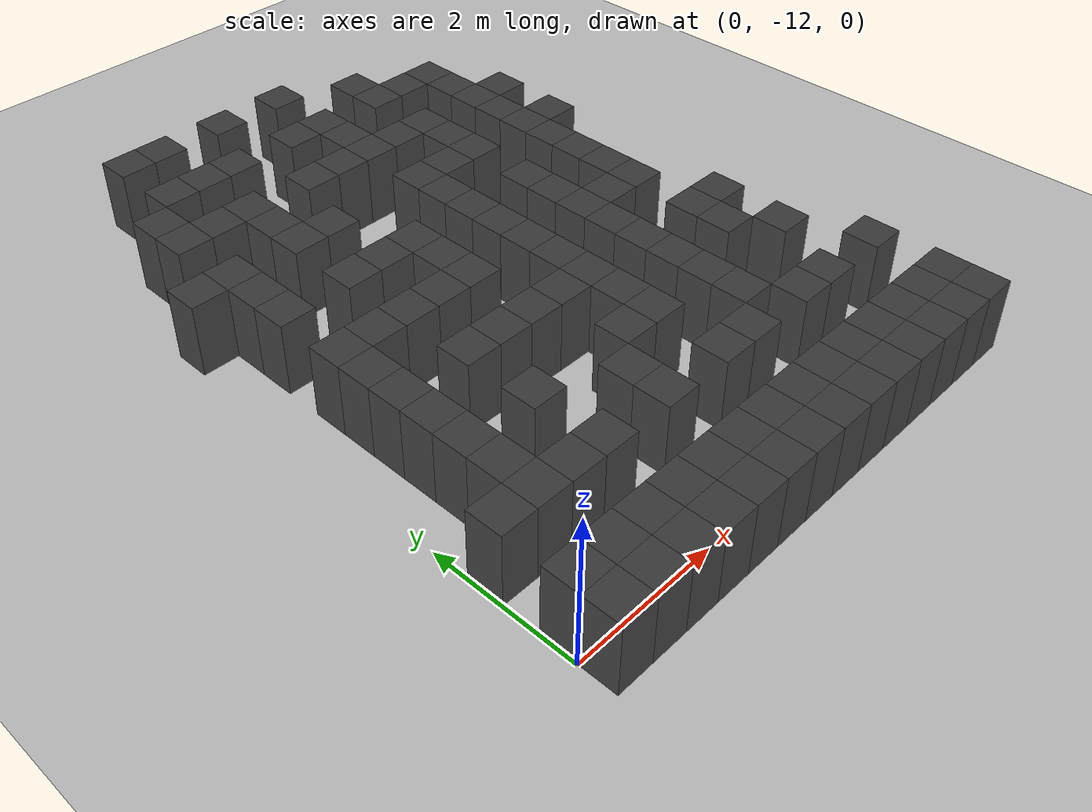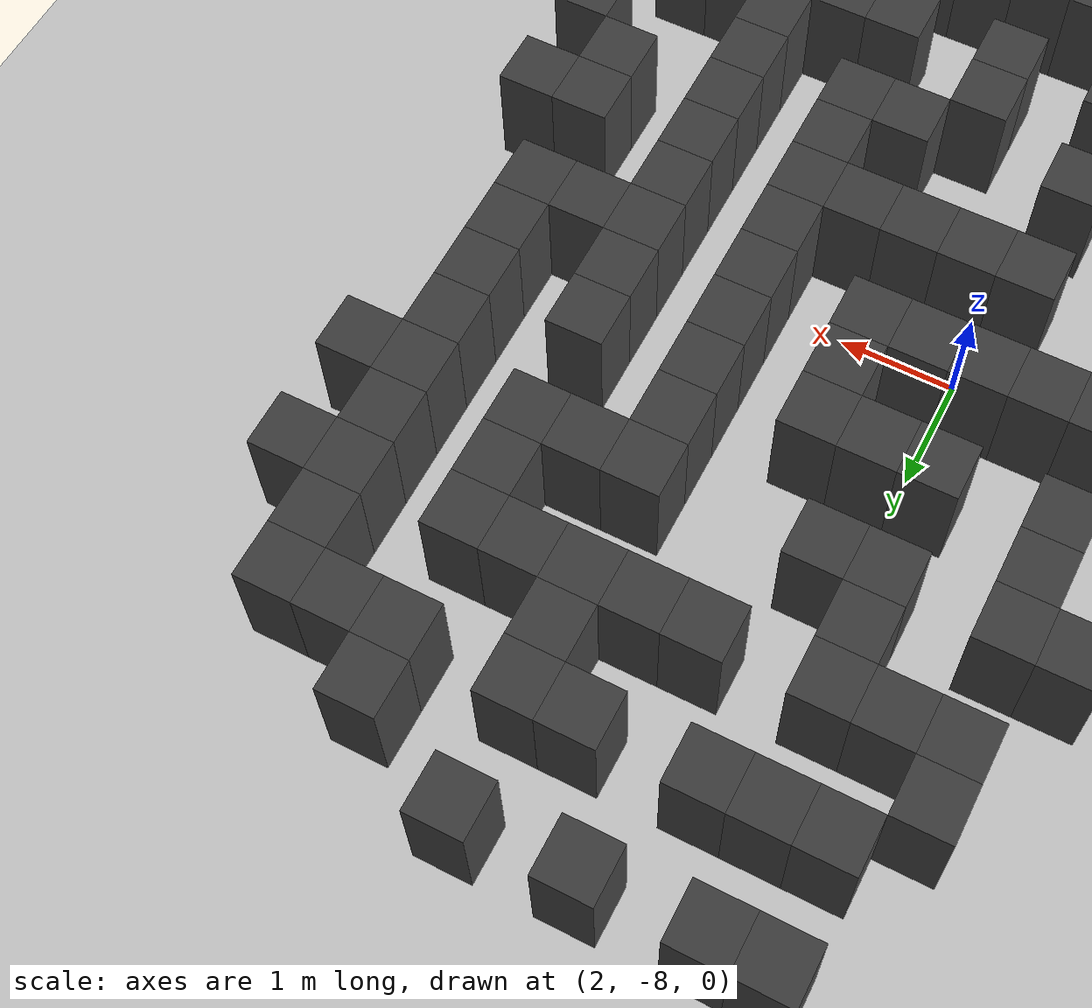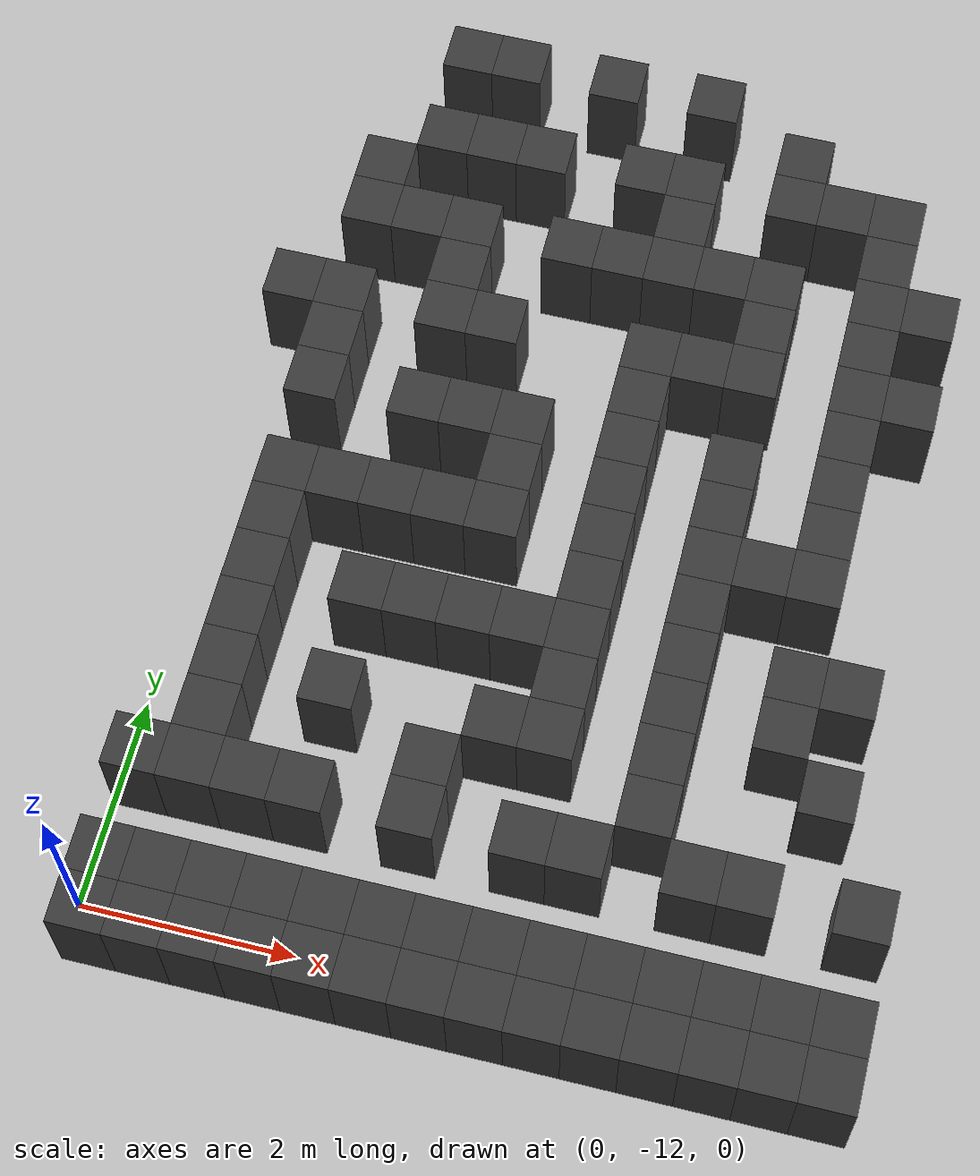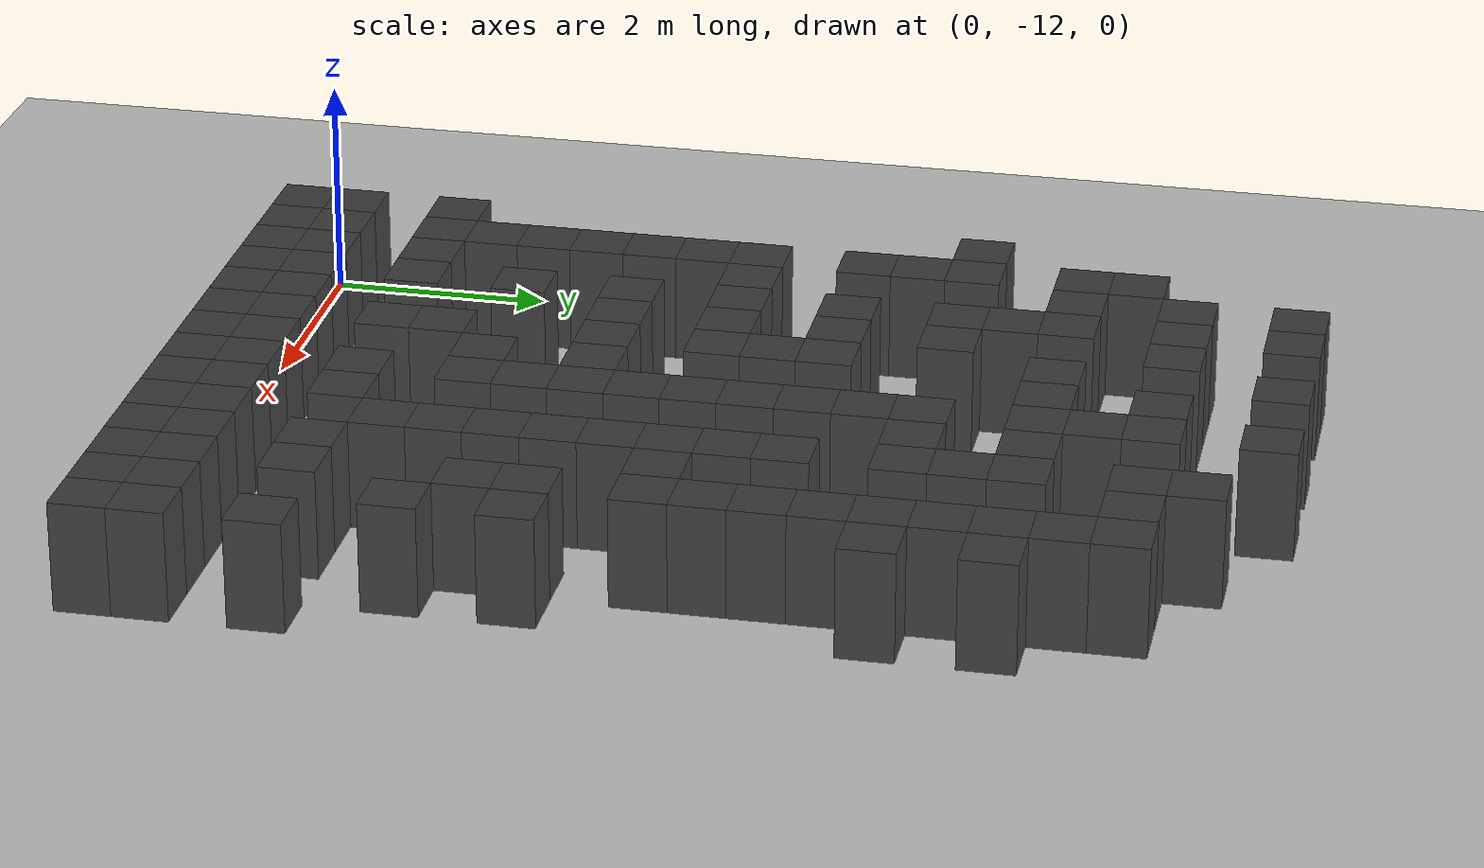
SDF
<sdf version="1.7">
 <world name="map_16271">
  <model name="ground_plane">
   <static>true</static>
   <link name="link">
    <collision name="collision">
     <geometry><plane><normal>0 0 1</normal><size>200 200</size></plane></geometry>
    </collision>
    <visual name="visual">
     <geometry><plane><normal>0 0 1</normal><size>200 200</size></plane></geometry>
     <material><ambient>0.8 0.8 0.8 1</ambient><diffuse>0.8 0.8 0.8 1</diffuse></material>
    </visual>
   </link>
  </model>
  <model name="maze_environment">
   <static>true</static>
   <link name="wall_738">
    <pose>1.250 -2.750 0.500 0 0 0</pose>
    <collision name="col"><geometry><box><size>0.5 0.5 1.0</size></box></geometry></collision>
    <visual name="vis">
     <geometry><box><size>0.5 0.5 1.0</size></box></geometry>
     <material><ambient>0.15 0.15 0.15 1</ambient><diffuse>0.25 0.25 0.25 1</diffuse></material>
    </visual>
   </link>
   <link name="wall_739">
    <pose>1.750 -2.750 0.500 0 0 0</pose>
    <collision name="col"><geometry><box><size>0.5 0.5 1.0</size></box></geometry></collision>
    <visual name="vis">
     <geometry><box><size>0.5 0.5 1.0</size></box></geometry>
     <material><ambient>0.15 0.15 0.15 1</ambient><diffuse>0.25 0.25 0.25 1</diffuse></material>
    </visual>
   </link>
   <link name="wall_740">
    <pose>2.750 -2.750 0.500 0 0 0</pose>
    <collision name="col"><geometry><box><size>0.5 0.5 1.0</size></box></geometry></collision>
    <visual name="vis">
     <geometry><box><size>0.5 0.5 1.0</size></box></geometry>
     <material><ambient>0.15 0.15 0.15 1</ambient><diffuse>0.25 0.25 0.25 1</diffuse></material>
    </visual>
   </link>
   <link name="wall_741">
    <pose>3.750 -2.750 0.500 0 0 0</pose>
    <collision name="col"><geometry><box><size>0.5 0.5 1.0</size></box></geometry></collision>
    <visual name="vis">
     <geometry><box><size>0.5 0.5 1.0</size></box></geometry>
     <material><ambient>0.15 0.15 0.15 1</ambient><diffuse>0.25 0.25 0.25 1</diffuse></material>
    </visual>
   </link>
   <link name="wall_757">
    <pose>4.750 -3.250 0.500 0 0 0</pose>
    <collision name="col"><geometry><box><size>0.5 0.5 1.0</size></box></geometry></collision>
    <visual name="vis">
     <geometry><box><size>0.5 0.5 1.0</size></box></geometry>
     <material><ambient>0.15 0.15 0.15 1</ambient><diffuse>0.25 0.25 0.25 1</diffuse></material>
    </visual>
   </link>
   <link name="wall_781">
    <pose>1.250 -3.750 0.500 0 0 0</pose>
    <collision name="col"><geometry><box><size>0.5 0.5 1.0</size></box></geometry></collision>
    <visual name="vis">
     <geometry><box><size>0.5 0.5 1.0</size></box></geometry>
     <material><ambient>0.15 0.15 0.15 1</ambient><diffuse>0.25 0.25 0.25 1</diffuse></material>
    </visual>
   </link>
   <link name="wall_782">
    <pose>1.750 -3.750 0.500 0 0 0</pose>
    <collision name="col"><geometry><box><size>0.5 0.5 1.0</size></box></geometry></collision>
    <visual name="vis">
     <geometry><box><size>0.5 0.5 1.0</size></box></geometry>
     <material><ambient>0.15 0.15 0.15 1</ambient><diffuse>0.25 0.25 0.25 1</diffuse></material>
    </visual>
   </link>
   <link name="wall_783">
    <pose>2.250 -3.750 0.500 0 0 0</pose>
    <collision name="col"><geometry><box><size>0.5 0.5 1.0</size></box></geometry></collision>
    <visual name="vis">
     <geometry><box><size>0.5 0.5 1.0</size></box></geometry>
     <material><ambient>0.15 0.15 0.15 1</ambient><diffuse>0.25 0.25 0.25 1</diffuse></material>
    </visual>
   </link>
   <link name="wall_784">
    <pose>3.250 -3.750 0.500 0 0 0</pose>
    <collision name="col"><geometry><box><size>0.5 0.5 1.0</size></box></geometry></collision>
    <visual name="vis">
     <geometry><box><size>0.5 0.5 1.0</size></box></geometry>
     <material><ambient>0.15 0.15 0.15 1</ambient><diffuse>0.25 0.25 0.25 1</diffuse></material>
    </visual>
   </link>
   <link name="wall_785">
    <pose>3.750 -3.750 0.500 0 0 0</pose>
    <collision name="col"><geometry><box><size>0.5 0.5 1.0</size></box></geometry></collision>
    <visual name="vis">
     <geometry><box><size>0.5 0.5 1.0</size></box></geometry>
     <material><ambient>0.15 0.15 0.15 1</ambient><diffuse>0.25 0.25 0.25 1</diffuse></material>
    </visual>
   </link>
   <link name="wall_786">
    <pose>4.750 -3.750 0.500 0 0 0</pose>
    <collision name="col"><geometry><box><size>0.5 0.5 1.0</size></box></geometry></collision>
    <visual name="vis">
     <geometry><box><size>0.5 0.5 1.0</size></box></geometry>
     <material><ambient>0.15 0.15 0.15 1</ambient><diffuse>0.25 0.25 0.25 1</diffuse></material>
    </visual>
   </link>
   <link name="wall_787">
    <pose>5.250 -3.750 0.500 0 0 0</pose>
    <collision name="col"><geometry><box><size>0.5 0.5 1.0</size></box></geometry></collision>
    <visual name="vis">
     <geometry><box><size>0.5 0.5 1.0</size></box></geometry>
     <material><ambient>0.15 0.15 0.15 1</ambient><diffuse>0.25 0.25 0.25 1</diffuse></material>
    </visual>
   </link>
   <link name="wall_788">
    <pose>5.750 -3.750 0.500 0 0 0</pose>
    <collision name="col"><geometry><box><size>0.5 0.5 1.0</size></box></geometry></collision>
    <visual name="vis">
     <geometry><box><size>0.5 0.5 1.0</size></box></geometry>
     <material><ambient>0.15 0.15 0.15 1</ambient><diffuse>0.25 0.25 0.25 1</diffuse></material>
    </visual>
   </link>
   <link name="wall_804">
    <pose>0.750 -4.250 0.500 0 0 0</pose>
    <collision name="col"><geometry><box><size>0.5 0.5 1.0</size></box></geometry></collision>
    <visual name="vis">
     <geometry><box><size>0.5 0.5 1.0</size></box></geometry>
     <material><ambient>0.15 0.15 0.15 1</ambient><diffuse>0.25 0.25 0.25 1</diffuse></material>
    </visual>
   </link>
   <link name="wall_805">
    <pose>3.750 -4.250 0.500 0 0 0</pose>
    <collision name="col"><geometry><box><size>0.5 0.5 1.0</size></box></geometry></collision>
    <visual name="vis">
     <geometry><box><size>0.5 0.5 1.0</size></box></geometry>
     <material><ambient>0.15 0.15 0.15 1</ambient><diffuse>0.25 0.25 0.25 1</diffuse></material>
    </visual>
   </link>
   <link name="wall_806">
    <pose>5.750 -4.250 0.500 0 0 0</pose>
    <collision name="col"><geometry><box><size>0.5 0.5 1.0</size></box></geometry></collision>
    <visual name="vis">
     <geometry><box><size>0.5 0.5 1.0</size></box></geometry>
     <material><ambient>0.15 0.15 0.15 1</ambient><diffuse>0.25 0.25 0.25 1</diffuse></material>
    </visual>
   </link>
   <link name="wall_828">
    <pose>0.750 -4.750 0.500 0 0 0</pose>
    <collision name="col"><geometry><box><size>0.5 0.5 1.0</size></box></geometry></collision>
    <visual name="vis">
     <geometry><box><size>0.5 0.5 1.0</size></box></geometry>
     <material><ambient>0.15 0.15 0.15 1</ambient><diffuse>0.25 0.25 0.25 1</diffuse></material>
    </visual>
   </link>
   <link name="wall_829">
    <pose>1.250 -4.750 0.500 0 0 0</pose>
    <collision name="col"><geometry><box><size>0.5 0.5 1.0</size></box></geometry></collision>
    <visual name="vis">
     <geometry><box><size>0.5 0.5 1.0</size></box></geometry>
     <material><ambient>0.15 0.15 0.15 1</ambient><diffuse>0.25 0.25 0.25 1</diffuse></material>
    </visual>
   </link>
   <link name="wall_830">
    <pose>1.750 -4.750 0.500 0 0 0</pose>
    <collision name="col"><geometry><box><size>0.5 0.5 1.0</size></box></geometry></collision>
    <visual name="vis">
     <geometry><box><size>0.5 0.5 1.0</size></box></geometry>
     <material><ambient>0.15 0.15 0.15 1</ambient><diffuse>0.25 0.25 0.25 1</diffuse></material>
    </visual>
   </link>
   <link name="wall_831">
    <pose>2.750 -4.750 0.500 0 0 0</pose>
    <collision name="col"><geometry><box><size>0.5 0.5 1.0</size></box></geometry></collision>
    <visual name="vis">
     <geometry><box><size>0.5 0.5 1.0</size></box></geometry>
     <material><ambient>0.15 0.15 0.15 1</ambient><diffuse>0.25 0.25 0.25 1</diffuse></material>
    </visual>
   </link>
   <link name="wall_832">
    <pose>3.250 -4.750 0.500 0 0 0</pose>
    <collision name="col"><geometry><box><size>0.5 0.5 1.0</size></box></geometry></collision>
    <visual name="vis">
     <geometry><box><size>0.5 0.5 1.0</size></box></geometry>
     <material><ambient>0.15 0.15 0.15 1</ambient><diffuse>0.25 0.25 0.25 1</diffuse></material>
    </visual>
   </link>
   <link name="wall_833">
    <pose>3.750 -4.750 0.500 0 0 0</pose>
    <collision name="col"><geometry><box><size>0.5 0.5 1.0</size></box></geometry></collision>
    <visual name="vis">
     <geometry><box><size>0.5 0.5 1.0</size></box></geometry>
     <material><ambient>0.15 0.15 0.15 1</ambient><diffuse>0.25 0.25 0.25 1</diffuse></material>
    </visual>
   </link>
   <link name="wall_834">
    <pose>4.250 -4.750 0.500 0 0 0</pose>
    <collision name="col"><geometry><box><size>0.5 0.5 1.0</size></box></geometry></collision>
    <visual name="vis">
     <geometry><box><size>0.5 0.5 1.0</size></box></geometry>
     <material><ambient>0.15 0.15 0.15 1</ambient><diffuse>0.25 0.25 0.25 1</diffuse></material>
    </visual>
   </link>
   <link name="wall_835">
    <pose>4.750 -4.750 0.500 0 0 0</pose>
    <collision name="col"><geometry><box><size>0.5 0.5 1.0</size></box></geometry></collision>
    <visual name="vis">
     <geometry><box><size>0.5 0.5 1.0</size></box></geometry>
     <material><ambient>0.15 0.15 0.15 1</ambient><diffuse>0.25 0.25 0.25 1</diffuse></material>
    </visual>
   </link>
   <link name="wall_836">
    <pose>5.750 -4.750 0.500 0 0 0</pose>
    <collision name="col"><geometry><box><size>0.5 0.5 1.0</size></box></geometry></collision>
    <visual name="vis">
     <geometry><box><size>0.5 0.5 1.0</size></box></geometry>
     <material><ambient>0.15 0.15 0.15 1</ambient><diffuse>0.25 0.25 0.25 1</diffuse></material>
    </visual>
   </link>
   <link name="wall_837">
    <pose>6.250 -4.750 0.500 0 0 0</pose>
    <collision name="col"><geometry><box><size>0.5 0.5 1.0</size></box></geometry></collision>
    <visual name="vis">
     <geometry><box><size>0.5 0.5 1.0</size></box></geometry>
     <material><ambient>0.15 0.15 0.15 1</ambient><diffuse>0.25 0.25 0.25 1</diffuse></material>
    </visual>
   </link>
   <link name="wall_855">
    <pose>1.750 -5.250 0.500 0 0 0</pose>
    <collision name="col"><geometry><box><size>0.5 0.5 1.0</size></box></geometry></collision>
    <visual name="vis">
     <geometry><box><size>0.5 0.5 1.0</size></box></geometry>
     <material><ambient>0.15 0.15 0.15 1</ambient><diffuse>0.25 0.25 0.25 1</diffuse></material>
    </visual>
   </link>
   <link name="wall_856">
    <pose>4.750 -5.250 0.500 0 0 0</pose>
    <collision name="col"><geometry><box><size>0.5 0.5 1.0</size></box></geometry></collision>
    <visual name="vis">
     <geometry><box><size>0.5 0.5 1.0</size></box></geometry>
     <material><ambient>0.15 0.15 0.15 1</ambient><diffuse>0.25 0.25 0.25 1</diffuse></material>
    </visual>
   </link>
   <link name="wall_857">
    <pose>5.750 -5.250 0.500 0 0 0</pose>
    <collision name="col"><geometry><box><size>0.5 0.5 1.0</size></box></geometry></collision>
    <visual name="vis">
     <geometry><box><size>0.5 0.5 1.0</size></box></geometry>
     <material><ambient>0.15 0.15 0.15 1</ambient><diffuse>0.25 0.25 0.25 1</diffuse></material>
    </visual>
   </link>
   <link name="wall_875">
    <pose>0.250 -5.750 0.500 0 0 0</pose>
    <collision name="col"><geometry><box><size>0.5 0.5 1.0</size></box></geometry></collision>
    <visual name="vis">
     <geometry><box><size>0.5 0.5 1.0</size></box></geometry>
     <material><ambient>0.15 0.15 0.15 1</ambient><diffuse>0.25 0.25 0.25 1</diffuse></material>
    </visual>
   </link>
   <link name="wall_876">
    <pose>0.750 -5.750 0.500 0 0 0</pose>
    <collision name="col"><geometry><box><size>0.5 0.5 1.0</size></box></geometry></collision>
    <visual name="vis">
     <geometry><box><size>0.5 0.5 1.0</size></box></geometry>
     <material><ambient>0.15 0.15 0.15 1</ambient><diffuse>0.25 0.25 0.25 1</diffuse></material>
    </visual>
   </link>
   <link name="wall_877">
    <pose>1.750 -5.750 0.500 0 0 0</pose>
    <collision name="col"><geometry><box><size>0.5 0.5 1.0</size></box></geometry></collision>
    <visual name="vis">
     <geometry><box><size>0.5 0.5 1.0</size></box></geometry>
     <material><ambient>0.15 0.15 0.15 1</ambient><diffuse>0.25 0.25 0.25 1</diffuse></material>
    </visual>
   </link>
   <link name="wall_878">
    <pose>2.250 -5.750 0.500 0 0 0</pose>
    <collision name="col"><geometry><box><size>0.5 0.5 1.0</size></box></geometry></collision>
    <visual name="vis">
     <geometry><box><size>0.5 0.5 1.0</size></box></geometry>
     <material><ambient>0.15 0.15 0.15 1</ambient><diffuse>0.25 0.25 0.25 1</diffuse></material>
    </visual>
   </link>
   <link name="wall_879">
    <pose>3.750 -5.750 0.500 0 0 0</pose>
    <collision name="col"><geometry><box><size>0.5 0.5 1.0</size></box></geometry></collision>
    <visual name="vis">
     <geometry><box><size>0.5 0.5 1.0</size></box></geometry>
     <material><ambient>0.15 0.15 0.15 1</ambient><diffuse>0.25 0.25 0.25 1</diffuse></material>
    </visual>
   </link>
   <link name="wall_880">
    <pose>4.250 -5.750 0.500 0 0 0</pose>
    <collision name="col"><geometry><box><size>0.5 0.5 1.0</size></box></geometry></collision>
    <visual name="vis">
     <geometry><box><size>0.5 0.5 1.0</size></box></geometry>
     <material><ambient>0.15 0.15 0.15 1</ambient><diffuse>0.25 0.25 0.25 1</diffuse></material>
    </visual>
   </link>
   <link name="wall_881">
    <pose>4.750 -5.750 0.500 0 0 0</pose>
    <collision name="col"><geometry><box><size>0.5 0.5 1.0</size></box></geometry></collision>
    <visual name="vis">
     <geometry><box><size>0.5 0.5 1.0</size></box></geometry>
     <material><ambient>0.15 0.15 0.15 1</ambient><diffuse>0.25 0.25 0.25 1</diffuse></material>
    </visual>
   </link>
   <link name="wall_882">
    <pose>5.750 -5.750 0.500 0 0 0</pose>
    <collision name="col"><geometry><box><size>0.5 0.5 1.0</size></box></geometry></collision>
    <visual name="vis">
     <geometry><box><size>0.5 0.5 1.0</size></box></geometry>
     <material><ambient>0.15 0.15 0.15 1</ambient><diffuse>0.25 0.25 0.25 1</diffuse></material>
    </visual>
   </link>
   <link name="wall_883">
    <pose>6.250 -5.750 0.500 0 0 0</pose>
    <collision name="col"><geometry><box><size>0.5 0.5 1.0</size></box></geometry></collision>
    <visual name="vis">
     <geometry><box><size>0.5 0.5 1.0</size></box></geometry>
     <material><ambient>0.15 0.15 0.15 1</ambient><diffuse>0.25 0.25 0.25 1</diffuse></material>
    </visual>
   </link>
   <link name="wall_900">
    <pose>0.750 -6.250 0.500 0 0 0</pose>
    <collision name="col"><geometry><box><size>0.5 0.5 1.0</size></box></geometry></collision>
    <visual name="vis">
     <geometry><box><size>0.5 0.5 1.0</size></box></geometry>
     <material><ambient>0.15 0.15 0.15 1</ambient><diffuse>0.25 0.25 0.25 1</diffuse></material>
    </visual>
   </link>
   <link name="wall_901">
    <pose>3.750 -6.250 0.500 0 0 0</pose>
    <collision name="col"><geometry><box><size>0.5 0.5 1.0</size></box></geometry></collision>
    <visual name="vis">
     <geometry><box><size>0.5 0.5 1.0</size></box></geometry>
     <material><ambient>0.15 0.15 0.15 1</ambient><diffuse>0.25 0.25 0.25 1</diffuse></material>
    </visual>
   </link>
   <link name="wall_902">
    <pose>5.750 -6.250 0.500 0 0 0</pose>
    <collision name="col"><geometry><box><size>0.5 0.5 1.0</size></box></geometry></collision>
    <visual name="vis">
     <geometry><box><size>0.5 0.5 1.0</size></box></geometry>
     <material><ambient>0.15 0.15 0.15 1</ambient><diffuse>0.25 0.25 0.25 1</diffuse></material>
    </visual>
   </link>
   <link name="wall_927">
    <pose>0.750 -6.750 0.500 0 0 0</pose>
    <collision name="col"><geometry><box><size>0.5 0.5 1.0</size></box></geometry></collision>
    <visual name="vis">
     <geometry><box><size>0.5 0.5 1.0</size></box></geometry>
     <material><ambient>0.15 0.15 0.15 1</ambient><diffuse>0.25 0.25 0.25 1</diffuse></material>
    </visual>
   </link>
   <link name="wall_928">
    <pose>1.750 -6.750 0.500 0 0 0</pose>
    <collision name="col"><geometry><box><size>0.5 0.5 1.0</size></box></geometry></collision>
    <visual name="vis">
     <geometry><box><size>0.5 0.5 1.0</size></box></geometry>
     <material><ambient>0.15 0.15 0.15 1</ambient><diffuse>0.25 0.25 0.25 1</diffuse></material>
    </visual>
   </link>
   <link name="wall_929">
    <pose>2.250 -6.750 0.500 0 0 0</pose>
    <collision name="col"><geometry><box><size>0.5 0.5 1.0</size></box></geometry></collision>
    <visual name="vis">
     <geometry><box><size>0.5 0.5 1.0</size></box></geometry>
     <material><ambient>0.15 0.15 0.15 1</ambient><diffuse>0.25 0.25 0.25 1</diffuse></material>
    </visual>
   </link>
   <link name="wall_930">
    <pose>2.750 -6.750 0.500 0 0 0</pose>
    <collision name="col"><geometry><box><size>0.5 0.5 1.0</size></box></geometry></collision>
    <visual name="vis">
     <geometry><box><size>0.5 0.5 1.0</size></box></geometry>
     <material><ambient>0.15 0.15 0.15 1</ambient><diffuse>0.25 0.25 0.25 1</diffuse></material>
    </visual>
   </link>
   <link name="wall_931">
    <pose>3.750 -6.750 0.500 0 0 0</pose>
    <collision name="col"><geometry><box><size>0.5 0.5 1.0</size></box></geometry></collision>
    <visual name="vis">
     <geometry><box><size>0.5 0.5 1.0</size></box></geometry>
     <material><ambient>0.15 0.15 0.15 1</ambient><diffuse>0.25 0.25 0.25 1</diffuse></material>
    </visual>
   </link>
   <link name="wall_932">
    <pose>4.750 -6.750 0.500 0 0 0</pose>
    <collision name="col"><geometry><box><size>0.5 0.5 1.0</size></box></geometry></collision>
    <visual name="vis">
     <geometry><box><size>0.5 0.5 1.0</size></box></geometry>
     <material><ambient>0.15 0.15 0.15 1</ambient><diffuse>0.25 0.25 0.25 1</diffuse></material>
    </visual>
   </link>
   <link name="wall_933">
    <pose>5.750 -6.750 0.500 0 0 0</pose>
    <collision name="col"><geometry><box><size>0.5 0.5 1.0</size></box></geometry></collision>
    <visual name="vis">
     <geometry><box><size>0.5 0.5 1.0</size></box></geometry>
     <material><ambient>0.15 0.15 0.15 1</ambient><diffuse>0.25 0.25 0.25 1</diffuse></material>
    </visual>
   </link>
   <link name="wall_950">
    <pose>2.750 -7.250 0.500 0 0 0</pose>
    <collision name="col"><geometry><box><size>0.5 0.5 1.0</size></box></geometry></collision>
    <visual name="vis">
     <geometry><box><size>0.5 0.5 1.0</size></box></geometry>
     <material><ambient>0.15 0.15 0.15 1</ambient><diffuse>0.25 0.25 0.25 1</diffuse></material>
    </visual>
   </link>
   <link name="wall_951">
    <pose>3.750 -7.250 0.500 0 0 0</pose>
    <collision name="col"><geometry><box><size>0.5 0.5 1.0</size></box></geometry></collision>
    <visual name="vis">
     <geometry><box><size>0.5 0.5 1.0</size></box></geometry>
     <material><ambient>0.15 0.15 0.15 1</ambient><diffuse>0.25 0.25 0.25 1</diffuse></material>
    </visual>
   </link>
   <link name="wall_952">
    <pose>4.750 -7.250 0.500 0 0 0</pose>
    <collision name="col"><geometry><box><size>0.5 0.5 1.0</size></box></geometry></collision>
    <visual name="vis">
     <geometry><box><size>0.5 0.5 1.0</size></box></geometry>
     <material><ambient>0.15 0.15 0.15 1</ambient><diffuse>0.25 0.25 0.25 1</diffuse></material>
    </visual>
   </link>
   <link name="wall_953">
    <pose>5.750 -7.250 0.500 0 0 0</pose>
    <collision name="col"><geometry><box><size>0.5 0.5 1.0</size></box></geometry></collision>
    <visual name="vis">
     <geometry><box><size>0.5 0.5 1.0</size></box></geometry>
     <material><ambient>0.15 0.15 0.15 1</ambient><diffuse>0.25 0.25 0.25 1</diffuse></material>
    </visual>
   </link>
   <link name="wall_973">
    <pose>0.750 -7.750 0.500 0 0 0</pose>
    <collision name="col"><geometry><box><size>0.5 0.5 1.0</size></box></geometry></collision>
    <visual name="vis">
     <geometry><box><size>0.5 0.5 1.0</size></box></geometry>
     <material><ambient>0.15 0.15 0.15 1</ambient><diffuse>0.25 0.25 0.25 1</diffuse></material>
    </visual>
   </link>
   <link name="wall_974">
    <pose>1.250 -7.750 0.500 0 0 0</pose>
    <collision name="col"><geometry><box><size>0.5 0.5 1.0</size></box></geometry></collision>
    <visual name="vis">
     <geometry><box><size>0.5 0.5 1.0</size></box></geometry>
     <material><ambient>0.15 0.15 0.15 1</ambient><diffuse>0.25 0.25 0.25 1</diffuse></material>
    </visual>
   </link>
   <link name="wall_975">
    <pose>1.750 -7.750 0.500 0 0 0</pose>
    <collision name="col"><geometry><box><size>0.5 0.5 1.0</size></box></geometry></collision>
    <visual name="vis">
     <geometry><box><size>0.5 0.5 1.0</size></box></geometry>
     <material><ambient>0.15 0.15 0.15 1</ambient><diffuse>0.25 0.25 0.25 1</diffuse></material>
    </visual>
   </link>
   <link name="wall_976">
    <pose>2.250 -7.750 0.500 0 0 0</pose>
    <collision name="col"><geometry><box><size>0.5 0.5 1.0</size></box></geometry></collision>
    <visual name="vis">
     <geometry><box><size>0.5 0.5 1.0</size></box></geometry>
     <material><ambient>0.15 0.15 0.15 1</ambient><diffuse>0.25 0.25 0.25 1</diffuse></material>
    </visual>
   </link>
   <link name="wall_977">
    <pose>2.750 -7.750 0.500 0 0 0</pose>
    <collision name="col"><geometry><box><size>0.5 0.5 1.0</size></box></geometry></collision>
    <visual name="vis">
     <geometry><box><size>0.5 0.5 1.0</size></box></geometry>
     <material><ambient>0.15 0.15 0.15 1</ambient><diffuse>0.25 0.25 0.25 1</diffuse></material>
    </visual>
   </link>
   <link name="wall_978">
    <pose>3.750 -7.750 0.500 0 0 0</pose>
    <collision name="col"><geometry><box><size>0.5 0.5 1.0</size></box></geometry></collision>
    <visual name="vis">
     <geometry><box><size>0.5 0.5 1.0</size></box></geometry>
     <material><ambient>0.15 0.15 0.15 1</ambient><diffuse>0.25 0.25 0.25 1</diffuse></material>
    </visual>
   </link>
   <link name="wall_979">
    <pose>4.750 -7.750 0.500 0 0 0</pose>
    <collision name="col"><geometry><box><size>0.5 0.5 1.0</size></box></geometry></collision>
    <visual name="vis">
     <geometry><box><size>0.5 0.5 1.0</size></box></geometry>
     <material><ambient>0.15 0.15 0.15 1</ambient><diffuse>0.25 0.25 0.25 1</diffuse></material>
    </visual>
   </link>
   <link name="wall_980">
    <pose>5.250 -7.750 0.500 0 0 0</pose>
    <collision name="col"><geometry><box><size>0.5 0.5 1.0</size></box></geometry></collision>
    <visual name="vis">
     <geometry><box><size>0.5 0.5 1.0</size></box></geometry>
     <material><ambient>0.15 0.15 0.15 1</ambient><diffuse>0.25 0.25 0.25 1</diffuse></material>
    </visual>
   </link>
   <link name="wall_981">
    <pose>5.750 -7.750 0.500 0 0 0</pose>
    <collision name="col"><geometry><box><size>0.5 0.5 1.0</size></box></geometry></collision>
    <visual name="vis">
     <geometry><box><size>0.5 0.5 1.0</size></box></geometry>
     <material><ambient>0.15 0.15 0.15 1</ambient><diffuse>0.25 0.25 0.25 1</diffuse></material>
    </visual>
   </link>
   <link name="wall_998">
    <pose>0.750 -8.250 0.500 0 0 0</pose>
    <collision name="col"><geometry><box><size>0.5 0.5 1.0</size></box></geometry></collision>
    <visual name="vis">
     <geometry><box><size>0.5 0.5 1.0</size></box></geometry>
     <material><ambient>0.15 0.15 0.15 1</ambient><diffuse>0.25 0.25 0.25 1</diffuse></material>
    </visual>
   </link>
   <link name="wall_999">
    <pose>3.750 -8.250 0.500 0 0 0</pose>
    <collision name="col"><geometry><box><size>0.5 0.5 1.0</size></box></geometry></collision>
    <visual name="vis">
     <geometry><box><size>0.5 0.5 1.0</size></box></geometry>
     <material><ambient>0.15 0.15 0.15 1</ambient><diffuse>0.25 0.25 0.25 1</diffuse></material>
    </visual>
   </link>
   <link name="wall_1000">
    <pose>4.750 -8.250 0.500 0 0 0</pose>
    <collision name="col"><geometry><box><size>0.5 0.5 1.0</size></box></geometry></collision>
    <visual name="vis">
     <geometry><box><size>0.5 0.5 1.0</size></box></geometry>
     <material><ambient>0.15 0.15 0.15 1</ambient><diffuse>0.25 0.25 0.25 1</diffuse></material>
    </visual>
   </link>
   <link name="wall_1024">
    <pose>0.750 -8.750 0.500 0 0 0</pose>
    <collision name="col"><geometry><box><size>0.5 0.5 1.0</size></box></geometry></collision>
    <visual name="vis">
     <geometry><box><size>0.5 0.5 1.0</size></box></geometry>
     <material><ambient>0.15 0.15 0.15 1</ambient><diffuse>0.25 0.25 0.25 1</diffuse></material>
    </visual>
   </link>
   <link name="wall_1025">
    <pose>1.750 -8.750 0.500 0 0 0</pose>
    <collision name="col"><geometry><box><size>0.5 0.5 1.0</size></box></geometry></collision>
    <visual name="vis">
     <geometry><box><size>0.5 0.5 1.0</size></box></geometry>
     <material><ambient>0.15 0.15 0.15 1</ambient><diffuse>0.25 0.25 0.25 1</diffuse></material>
    </visual>
   </link>
   <link name="wall_1026">
    <pose>2.250 -8.750 0.500 0 0 0</pose>
    <collision name="col"><geometry><box><size>0.5 0.5 1.0</size></box></geometry></collision>
    <visual name="vis">
     <geometry><box><size>0.5 0.5 1.0</size></box></geometry>
     <material><ambient>0.15 0.15 0.15 1</ambient><diffuse>0.25 0.25 0.25 1</diffuse></material>
    </visual>
   </link>
   <link name="wall_1027">
    <pose>2.750 -8.750 0.500 0 0 0</pose>
    <collision name="col"><geometry><box><size>0.5 0.5 1.0</size></box></geometry></collision>
    <visual name="vis">
     <geometry><box><size>0.5 0.5 1.0</size></box></geometry>
     <material><ambient>0.15 0.15 0.15 1</ambient><diffuse>0.25 0.25 0.25 1</diffuse></material>
    </visual>
   </link>
   <link name="wall_1028">
    <pose>3.250 -8.750 0.500 0 0 0</pose>
    <collision name="col"><geometry><box><size>0.5 0.5 1.0</size></box></geometry></collision>
    <visual name="vis">
     <geometry><box><size>0.5 0.5 1.0</size></box></geometry>
     <material><ambient>0.15 0.15 0.15 1</ambient><diffuse>0.25 0.25 0.25 1</diffuse></material>
    </visual>
   </link>
   <link name="wall_1029">
    <pose>3.750 -8.750 0.500 0 0 0</pose>
    <collision name="col"><geometry><box><size>0.5 0.5 1.0</size></box></geometry></collision>
    <visual name="vis">
     <geometry><box><size>0.5 0.5 1.0</size></box></geometry>
     <material><ambient>0.15 0.15 0.15 1</ambient><diffuse>0.25 0.25 0.25 1</diffuse></material>
    </visual>
   </link>
   <link name="wall_1030">
    <pose>4.750 -8.750 0.500 0 0 0</pose>
    <collision name="col"><geometry><box><size>0.5 0.5 1.0</size></box></geometry></collision>
    <visual name="vis">
     <geometry><box><size>0.5 0.5 1.0</size></box></geometry>
     <material><ambient>0.15 0.15 0.15 1</ambient><diffuse>0.25 0.25 0.25 1</diffuse></material>
    </visual>
   </link>
   <link name="wall_1031">
    <pose>5.750 -8.750 0.500 0 0 0</pose>
    <collision name="col"><geometry><box><size>0.5 0.5 1.0</size></box></geometry></collision>
    <visual name="vis">
     <geometry><box><size>0.5 0.5 1.0</size></box></geometry>
     <material><ambient>0.15 0.15 0.15 1</ambient><diffuse>0.25 0.25 0.25 1</diffuse></material>
    </visual>
   </link>
   <link name="wall_1032">
    <pose>6.250 -8.750 0.500 0 0 0</pose>
    <collision name="col"><geometry><box><size>0.5 0.5 1.0</size></box></geometry></collision>
    <visual name="vis">
     <geometry><box><size>0.5 0.5 1.0</size></box></geometry>
     <material><ambient>0.15 0.15 0.15 1</ambient><diffuse>0.25 0.25 0.25 1</diffuse></material>
    </visual>
   </link>
   <link name="wall_1047">
    <pose>0.750 -9.250 0.500 0 0 0</pose>
    <collision name="col"><geometry><box><size>0.5 0.5 1.0</size></box></geometry></collision>
    <visual name="vis">
     <geometry><box><size>0.5 0.5 1.0</size></box></geometry>
     <material><ambient>0.15 0.15 0.15 1</ambient><diffuse>0.25 0.25 0.25 1</diffuse></material>
    </visual>
   </link>
   <link name="wall_1048">
    <pose>3.750 -9.250 0.500 0 0 0</pose>
    <collision name="col"><geometry><box><size>0.5 0.5 1.0</size></box></geometry></collision>
    <visual name="vis">
     <geometry><box><size>0.5 0.5 1.0</size></box></geometry>
     <material><ambient>0.15 0.15 0.15 1</ambient><diffuse>0.25 0.25 0.25 1</diffuse></material>
    </visual>
   </link>
   <link name="wall_1049">
    <pose>4.750 -9.250 0.500 0 0 0</pose>
    <collision name="col"><geometry><box><size>0.5 0.5 1.0</size></box></geometry></collision>
    <visual name="vis">
     <geometry><box><size>0.5 0.5 1.0</size></box></geometry>
     <material><ambient>0.15 0.15 0.15 1</ambient><diffuse>0.25 0.25 0.25 1</diffuse></material>
    </visual>
   </link>
   <link name="wall_1050">
    <pose>5.750 -9.250 0.500 0 0 0</pose>
    <collision name="col"><geometry><box><size>0.5 0.5 1.0</size></box></geometry></collision>
    <visual name="vis">
     <geometry><box><size>0.5 0.5 1.0</size></box></geometry>
     <material><ambient>0.15 0.15 0.15 1</ambient><diffuse>0.25 0.25 0.25 1</diffuse></material>
    </visual>
   </link>
   <link name="wall_1071">
    <pose>0.750 -9.750 0.500 0 0 0</pose>
    <collision name="col"><geometry><box><size>0.5 0.5 1.0</size></box></geometry></collision>
    <visual name="vis">
     <geometry><box><size>0.5 0.5 1.0</size></box></geometry>
     <material><ambient>0.15 0.15 0.15 1</ambient><diffuse>0.25 0.25 0.25 1</diffuse></material>
    </visual>
   </link>
   <link name="wall_1072">
    <pose>1.750 -9.750 0.500 0 0 0</pose>
    <collision name="col"><geometry><box><size>0.5 0.5 1.0</size></box></geometry></collision>
    <visual name="vis">
     <geometry><box><size>0.5 0.5 1.0</size></box></geometry>
     <material><ambient>0.15 0.15 0.15 1</ambient><diffuse>0.25 0.25 0.25 1</diffuse></material>
    </visual>
   </link>
   <link name="wall_1073">
    <pose>3.250 -9.750 0.500 0 0 0</pose>
    <collision name="col"><geometry><box><size>0.5 0.5 1.0</size></box></geometry></collision>
    <visual name="vis">
     <geometry><box><size>0.5 0.5 1.0</size></box></geometry>
     <material><ambient>0.15 0.15 0.15 1</ambient><diffuse>0.25 0.25 0.25 1</diffuse></material>
    </visual>
   </link>
   <link name="wall_1074">
    <pose>3.750 -9.750 0.500 0 0 0</pose>
    <collision name="col"><geometry><box><size>0.5 0.5 1.0</size></box></geometry></collision>
    <visual name="vis">
     <geometry><box><size>0.5 0.5 1.0</size></box></geometry>
     <material><ambient>0.15 0.15 0.15 1</ambient><diffuse>0.25 0.25 0.25 1</diffuse></material>
    </visual>
   </link>
   <link name="wall_1075">
    <pose>4.750 -9.750 0.500 0 0 0</pose>
    <collision name="col"><geometry><box><size>0.5 0.5 1.0</size></box></geometry></collision>
    <visual name="vis">
     <geometry><box><size>0.5 0.5 1.0</size></box></geometry>
     <material><ambient>0.15 0.15 0.15 1</ambient><diffuse>0.25 0.25 0.25 1</diffuse></material>
    </visual>
   </link>
   <link name="wall_1076">
    <pose>6.250 -9.750 0.500 0 0 0</pose>
    <collision name="col"><geometry><box><size>0.5 0.5 1.0</size></box></geometry></collision>
    <visual name="vis">
     <geometry><box><size>0.5 0.5 1.0</size></box></geometry>
     <material><ambient>0.15 0.15 0.15 1</ambient><diffuse>0.25 0.25 0.25 1</diffuse></material>
    </visual>
   </link>
   <link name="wall_1089">
    <pose>0.750 -10.250 0.500 0 0 0</pose>
    <collision name="col"><geometry><box><size>0.5 0.5 1.0</size></box></geometry></collision>
    <visual name="vis">
     <geometry><box><size>0.5 0.5 1.0</size></box></geometry>
     <material><ambient>0.15 0.15 0.15 1</ambient><diffuse>0.25 0.25 0.25 1</diffuse></material>
    </visual>
   </link>
   <link name="wall_1090">
    <pose>2.750 -10.250 0.500 0 0 0</pose>
    <collision name="col"><geometry><box><size>0.5 0.5 1.0</size></box></geometry></collision>
    <visual name="vis">
     <geometry><box><size>0.5 0.5 1.0</size></box></geometry>
     <material><ambient>0.15 0.15 0.15 1</ambient><diffuse>0.25 0.25 0.25 1</diffuse></material>
    </visual>
   </link>
   <link name="wall_1091">
    <pose>4.750 -10.250 0.500 0 0 0</pose>
    <collision name="col"><geometry><box><size>0.5 0.5 1.0</size></box></geometry></collision>
    <visual name="vis">
     <geometry><box><size>0.5 0.5 1.0</size></box></geometry>
     <material><ambient>0.15 0.15 0.15 1</ambient><diffuse>0.25 0.25 0.25 1</diffuse></material>
    </visual>
   </link>
   <link name="wall_1114">
    <pose>0.250 -10.750 0.500 0 0 0</pose>
    <collision name="col"><geometry><box><size>0.5 0.5 1.0</size></box></geometry></collision>
    <visual name="vis">
     <geometry><box><size>0.5 0.5 1.0</size></box></geometry>
     <material><ambient>0.15 0.15 0.15 1</ambient><diffuse>0.25 0.25 0.25 1</diffuse></material>
    </visual>
   </link>
   <link name="wall_1115">
    <pose>0.750 -10.750 0.500 0 0 0</pose>
    <collision name="col"><geometry><box><size>0.5 0.5 1.0</size></box></geometry></collision>
    <visual name="vis">
     <geometry><box><size>0.5 0.5 1.0</size></box></geometry>
     <material><ambient>0.15 0.15 0.15 1</ambient><diffuse>0.25 0.25 0.25 1</diffuse></material>
    </visual>
   </link>
   <link name="wall_1116">
    <pose>1.250 -10.750 0.500 0 0 0</pose>
    <collision name="col"><geometry><box><size>0.5 0.5 1.0</size></box></geometry></collision>
    <visual name="vis">
     <geometry><box><size>0.5 0.5 1.0</size></box></geometry>
     <material><ambient>0.15 0.15 0.15 1</ambient><diffuse>0.25 0.25 0.25 1</diffuse></material>
    </visual>
   </link>
   <link name="wall_1117">
    <pose>1.750 -10.750 0.500 0 0 0</pose>
    <collision name="col"><geometry><box><size>0.5 0.5 1.0</size></box></geometry></collision>
    <visual name="vis">
     <geometry><box><size>0.5 0.5 1.0</size></box></geometry>
     <material><ambient>0.15 0.15 0.15 1</ambient><diffuse>0.25 0.25 0.25 1</diffuse></material>
    </visual>
   </link>
   <link name="wall_1118">
    <pose>2.750 -10.750 0.500 0 0 0</pose>
    <collision name="col"><geometry><box><size>0.5 0.5 1.0</size></box></geometry></collision>
    <visual name="vis">
     <geometry><box><size>0.5 0.5 1.0</size></box></geometry>
     <material><ambient>0.15 0.15 0.15 1</ambient><diffuse>0.25 0.25 0.25 1</diffuse></material>
    </visual>
   </link>
   <link name="wall_1119">
    <pose>3.750 -10.750 0.500 0 0 0</pose>
    <collision name="col"><geometry><box><size>0.5 0.5 1.0</size></box></geometry></collision>
    <visual name="vis">
     <geometry><box><size>0.5 0.5 1.0</size></box></geometry>
     <material><ambient>0.15 0.15 0.15 1</ambient><diffuse>0.25 0.25 0.25 1</diffuse></material>
    </visual>
   </link>
   <link name="wall_1120">
    <pose>4.250 -10.750 0.500 0 0 0</pose>
    <collision name="col"><geometry><box><size>0.5 0.5 1.0</size></box></geometry></collision>
    <visual name="vis">
     <geometry><box><size>0.5 0.5 1.0</size></box></geometry>
     <material><ambient>0.15 0.15 0.15 1</ambient><diffuse>0.25 0.25 0.25 1</diffuse></material>
    </visual>
   </link>
   <link name="wall_1121">
    <pose>5.250 -10.750 0.500 0 0 0</pose>
    <collision name="col"><geometry><box><size>0.5 0.5 1.0</size></box></geometry></collision>
    <visual name="vis">
     <geometry><box><size>0.5 0.5 1.0</size></box></geometry>
     <material><ambient>0.15 0.15 0.15 1</ambient><diffuse>0.25 0.25 0.25 1</diffuse></material>
    </visual>
   </link>
   <link name="wall_1122">
    <pose>5.750 -10.750 0.500 0 0 0</pose>
    <collision name="col"><geometry><box><size>0.5 0.5 1.0</size></box></geometry></collision>
    <visual name="vis">
     <geometry><box><size>0.5 0.5 1.0</size></box></geometry>
     <material><ambient>0.15 0.15 0.15 1</ambient><diffuse>0.25 0.25 0.25 1</diffuse></material>
    </visual>
   </link>
   <link name="wall_1123">
    <pose>6.750 -10.750 0.500 0 0 0</pose>
    <collision name="col"><geometry><box><size>0.5 0.5 1.0</size></box></geometry></collision>
    <visual name="vis">
     <geometry><box><size>0.5 0.5 1.0</size></box></geometry>
     <material><ambient>0.15 0.15 0.15 1</ambient><diffuse>0.25 0.25 0.25 1</diffuse></material>
    </visual>
   </link>
   <link name="wall_1160">
    <pose>0.250 -11.750 0.500 0 0 0</pose>
    <collision name="col"><geometry><box><size>0.5 0.5 1.0</size></box></geometry></collision>
    <visual name="vis">
     <geometry><box><size>0.5 0.5 1.0</size></box></geometry>
     <material><ambient>0.15 0.15 0.15 1</ambient><diffuse>0.25 0.25 0.25 1</diffuse></material>
    </visual>
   </link>
   <link name="wall_1161">
    <pose>0.750 -11.750 0.500 0 0 0</pose>
    <collision name="col"><geometry><box><size>0.5 0.5 1.0</size></box></geometry></collision>
    <visual name="vis">
     <geometry><box><size>0.5 0.5 1.0</size></box></geometry>
     <material><ambient>0.15 0.15 0.15 1</ambient><diffuse>0.25 0.25 0.25 1</diffuse></material>
    </visual>
   </link>
   <link name="wall_1162">
    <pose>1.250 -11.750 0.500 0 0 0</pose>
    <collision name="col"><geometry><box><size>0.5 0.5 1.0</size></box></geometry></collision>
    <visual name="vis">
     <geometry><box><size>0.5 0.5 1.0</size></box></geometry>
     <material><ambient>0.15 0.15 0.15 1</ambient><diffuse>0.25 0.25 0.25 1</diffuse></material>
    </visual>
   </link>
   <link name="wall_1163">
    <pose>1.750 -11.750 0.500 0 0 0</pose>
    <collision name="col"><geometry><box><size>0.5 0.5 1.0</size></box></geometry></collision>
    <visual name="vis">
     <geometry><box><size>0.5 0.5 1.0</size></box></geometry>
     <material><ambient>0.15 0.15 0.15 1</ambient><diffuse>0.25 0.25 0.25 1</diffuse></material>
    </visual>
   </link>
   <link name="wall_1164">
    <pose>2.250 -11.750 0.500 0 0 0</pose>
    <collision name="col"><geometry><box><size>0.5 0.5 1.0</size></box></geometry></collision>
    <visual name="vis">
     <geometry><box><size>0.5 0.5 1.0</size></box></geometry>
     <material><ambient>0.15 0.15 0.15 1</ambient><diffuse>0.25 0.25 0.25 1</diffuse></material>
    </visual>
   </link>
   <link name="wall_1165">
    <pose>2.750 -11.750 0.500 0 0 0</pose>
    <collision name="col"><geometry><box><size>0.5 0.5 1.0</size></box></geometry></collision>
    <visual name="vis">
     <geometry><box><size>0.5 0.5 1.0</size></box></geometry>
     <material><ambient>0.15 0.15 0.15 1</ambient><diffuse>0.25 0.25 0.25 1</diffuse></material>
    </visual>
   </link>
   <link name="wall_1166">
    <pose>3.250 -11.750 0.500 0 0 0</pose>
    <collision name="col"><geometry><box><size>0.5 0.5 1.0</size></box></geometry></collision>
    <visual name="vis">
     <geometry><box><size>0.5 0.5 1.0</size></box></geometry>
     <material><ambient>0.15 0.15 0.15 1</ambient><diffuse>0.25 0.25 0.25 1</diffuse></material>
    </visual>
   </link>
   <link name="wall_1167">
    <pose>3.750 -11.750 0.500 0 0 0</pose>
    <collision name="col"><geometry><box><size>0.5 0.5 1.0</size></box></geometry></collision>
    <visual name="vis">
     <geometry><box><size>0.5 0.5 1.0</size></box></geometry>
     <material><ambient>0.15 0.15 0.15 1</ambient><diffuse>0.25 0.25 0.25 1</diffuse></material>
    </visual>
   </link>
   <link name="wall_1168">
    <pose>4.250 -11.750 0.500 0 0 0</pose>
    <collision name="col"><geometry><box><size>0.5 0.5 1.0</size></box></geometry></collision>
    <visual name="vis">
     <geometry><box><size>0.5 0.5 1.0</size></box></geometry>
     <material><ambient>0.15 0.15 0.15 1</ambient><diffuse>0.25 0.25 0.25 1</diffuse></material>
    </visual>
   </link>
   <link name="wall_1169">
    <pose>4.750 -11.750 0.500 0 0 0</pose>
    <collision name="col"><geometry><box><size>0.5 0.5 1.0</size></box></geometry></collision>
    <visual name="vis">
     <geometry><box><size>0.5 0.5 1.0</size></box></geometry>
     <material><ambient>0.15 0.15 0.15 1</ambient><diffuse>0.25 0.25 0.25 1</diffuse></material>
    </visual>
   </link>
   <link name="wall_1170">
    <pose>5.250 -11.750 0.500 0 0 0</pose>
    <collision name="col"><geometry><box><size>0.5 0.5 1.0</size></box></geometry></collision>
    <visual name="vis">
     <geometry><box><size>0.5 0.5 1.0</size></box></geometry>
     <material><ambient>0.15 0.15 0.15 1</ambient><diffuse>0.25 0.25 0.25 1</diffuse></material>
    </visual>
   </link>
   <link name="wall_1171">
    <pose>5.750 -11.750 0.500 0 0 0</pose>
    <collision name="col"><geometry><box><size>0.5 0.5 1.0</size></box></geometry></collision>
    <visual name="vis">
     <geometry><box><size>0.5 0.5 1.0</size></box></geometry>
     <material><ambient>0.15 0.15 0.15 1</ambient><diffuse>0.25 0.25 0.25 1</diffuse></material>
    </visual>
   </link>
   <link name="wall_1172">
    <pose>6.250 -11.750 0.500 0 0 0</pose>
    <collision name="col"><geometry><box><size>0.5 0.5 1.0</size></box></geometry></collision>
    <visual name="vis">
     <geometry><box><size>0.5 0.5 1.0</size></box></geometry>
     <material><ambient>0.15 0.15 0.15 1</ambient><diffuse>0.25 0.25 0.25 1</diffuse></material>
    </visual>
   </link>
   <link name="wall_1173">
    <pose>6.750 -11.750 0.500 0 0 0</pose>
    <collision name="col"><geometry><box><size>0.5 0.5 1.0</size></box></geometry></collision>
    <visual name="vis">
     <geometry><box><size>0.5 0.5 1.0</size></box></geometry>
     <material><ambient>0.15 0.15 0.15 1</ambient><diffuse>0.25 0.25 0.25 1</diffuse></material>
    </visual>
   </link>
   <link name="wall_1208">
    <pose>0.250 -12.250 0.500 0 0 0</pose>
    <collision name="col"><geometry><box><size>0.5 0.5 1.0</size></box></geometry></collision>
    <visual name="vis">
     <geometry><box><size>0.5 0.5 1.0</size></box></geometry>
     <material><ambient>0.15 0.15 0.15 1</ambient><diffuse>0.25 0.25 0.25 1</diffuse></material>
    </visual>
   </link>
   <link name="wall_1209">
    <pose>0.750 -12.250 0.500 0 0 0</pose>
    <collision name="col"><geometry><box><size>0.5 0.5 1.0</size></box></geometry></collision>
    <visual name="vis">
     <geometry><box><size>0.5 0.5 1.0</size></box></geometry>
     <material><ambient>0.15 0.15 0.15 1</ambient><diffuse>0.25 0.25 0.25 1</diffuse></material>
    </visual>
   </link>
   <link name="wall_1210">
    <pose>1.250 -12.250 0.500 0 0 0</pose>
    <collision name="col"><geometry><box><size>0.5 0.5 1.0</size></box></geometry></collision>
    <visual name="vis">
     <geometry><box><size>0.5 0.5 1.0</size></box></geometry>
     <material><ambient>0.15 0.15 0.15 1</ambient><diffuse>0.25 0.25 0.25 1</diffuse></material>
    </visual>
   </link>
   <link name="wall_1211">
    <pose>1.750 -12.250 0.500 0 0 0</pose>
    <collision name="col"><geometry><box><size>0.5 0.5 1.0</size></box></geometry></collision>
    <visual name="vis">
     <geometry><box><size>0.5 0.5 1.0</size></box></geometry>
     <material><ambient>0.15 0.15 0.15 1</ambient><diffuse>0.25 0.25 0.25 1</diffuse></material>
    </visual>
   </link>
   <link name="wall_1212">
    <pose>2.250 -12.250 0.500 0 0 0</pose>
    <collision name="col"><geometry><box><size>0.5 0.5 1.0</size></box></geometry></collision>
    <visual name="vis">
     <geometry><box><size>0.5 0.5 1.0</size></box></geometry>
     <material><ambient>0.15 0.15 0.15 1</ambient><diffuse>0.25 0.25 0.25 1</diffuse></material>
    </visual>
   </link>
   <link name="wall_1213">
    <pose>2.750 -12.250 0.500 0 0 0</pose>
    <collision name="col"><geometry><box><size>0.5 0.5 1.0</size></box></geometry></collision>
    <visual name="vis">
     <geometry><box><size>0.5 0.5 1.0</size></box></geometry>
     <material><ambient>0.15 0.15 0.15 1</ambient><diffuse>0.25 0.25 0.25 1</diffuse></material>
    </visual>
   </link>
   <link name="wall_1214">
    <pose>3.250 -12.250 0.500 0 0 0</pose>
    <collision name="col"><geometry><box><size>0.5 0.5 1.0</size></box></geometry></collision>
    <visual name="vis">
     <geometry><box><size>0.5 0.5 1.0</size></box></geometry>
     <material><ambient>0.15 0.15 0.15 1</ambient><diffuse>0.25 0.25 0.25 1</diffuse></material>
    </visual>
   </link>
   <link name="wall_1215">
    <pose>3.750 -12.250 0.500 0 0 0</pose>
    <collision name="col"><geometry><box><size>0.5 0.5 1.0</size></box></geometry></collision>
    <visual name="vis">
     <geometry><box><size>0.5 0.5 1.0</size></box></geometry>
     <material><ambient>0.15 0.15 0.15 1</ambient><diffuse>0.25 0.25 0.25 1</diffuse></material>
    </visual>
   </link>
   <link name="wall_1216">
    <pose>4.250 -12.250 0.500 0 0 0</pose>
    <collision name="col"><geometry><box><size>0.5 0.5 1.0</size></box></geometry></collision>
    <visual name="vis">
     <geometry><box><size>0.5 0.5 1.0</size></box></geometry>
     <material><ambient>0.15 0.15 0.15 1</ambient><diffuse>0.25 0.25 0.25 1</diffuse></material>
    </visual>
   </link>
   <link name="wall_1217">
    <pose>4.750 -12.250 0.500 0 0 0</pose>
    <collision name="col"><geometry><box><size>0.5 0.5 1.0</size></box></geometry></collision>
    <visual name="vis">
     <geometry><box><size>0.5 0.5 1.0</size></box></geometry>
     <material><ambient>0.15 0.15 0.15 1</ambient><diffuse>0.25 0.25 0.25 1</diffuse></material>
    </visual>
   </link>
   <link name="wall_1218">
    <pose>5.250 -12.250 0.500 0 0 0</pose>
    <collision name="col"><geometry><box><size>0.5 0.5 1.0</size></box></geometry></collision>
    <visual name="vis">
     <geometry><box><size>0.5 0.5 1.0</size></box></geometry>
     <material><ambient>0.15 0.15 0.15 1</ambient><diffuse>0.25 0.25 0.25 1</diffuse></material>
    </visual>
   </link>
   <link name="wall_1219">
    <pose>5.750 -12.250 0.500 0 0 0</pose>
    <collision name="col"><geometry><box><size>0.5 0.5 1.0</size></box></geometry></collision>
    <visual name="vis">
     <geometry><box><size>0.5 0.5 1.0</size></box></geometry>
     <material><ambient>0.15 0.15 0.15 1</ambient><diffuse>0.25 0.25 0.25 1</diffuse></material>
    </visual>
   </link>
   <link name="wall_1220">
    <pose>6.250 -12.250 0.500 0 0 0</pose>
    <collision name="col"><geometry><box><size>0.5 0.5 1.0</size></box></geometry></collision>
    <visual name="vis">
     <geometry><box><size>0.5 0.5 1.0</size></box></geometry>
     <material><ambient>0.15 0.15 0.15 1</ambient><diffuse>0.25 0.25 0.25 1</diffuse></material>
    </visual>
   </link>
   <link name="wall_1221">
    <pose>6.750 -12.250 0.500 0 0 0</pose>
    <collision name="col"><geometry><box><size>0.5 0.5 1.0</size></box></geometry></collision>
    <visual name="vis">
     <geometry><box><size>0.5 0.5 1.0</size></box></geometry>
     <material><ambient>0.15 0.15 0.15 1</ambient><diffuse>0.25 0.25 0.25 1</diffuse></material>
    </visual>
   </link>
  </model>
 </world>
</sdf>
